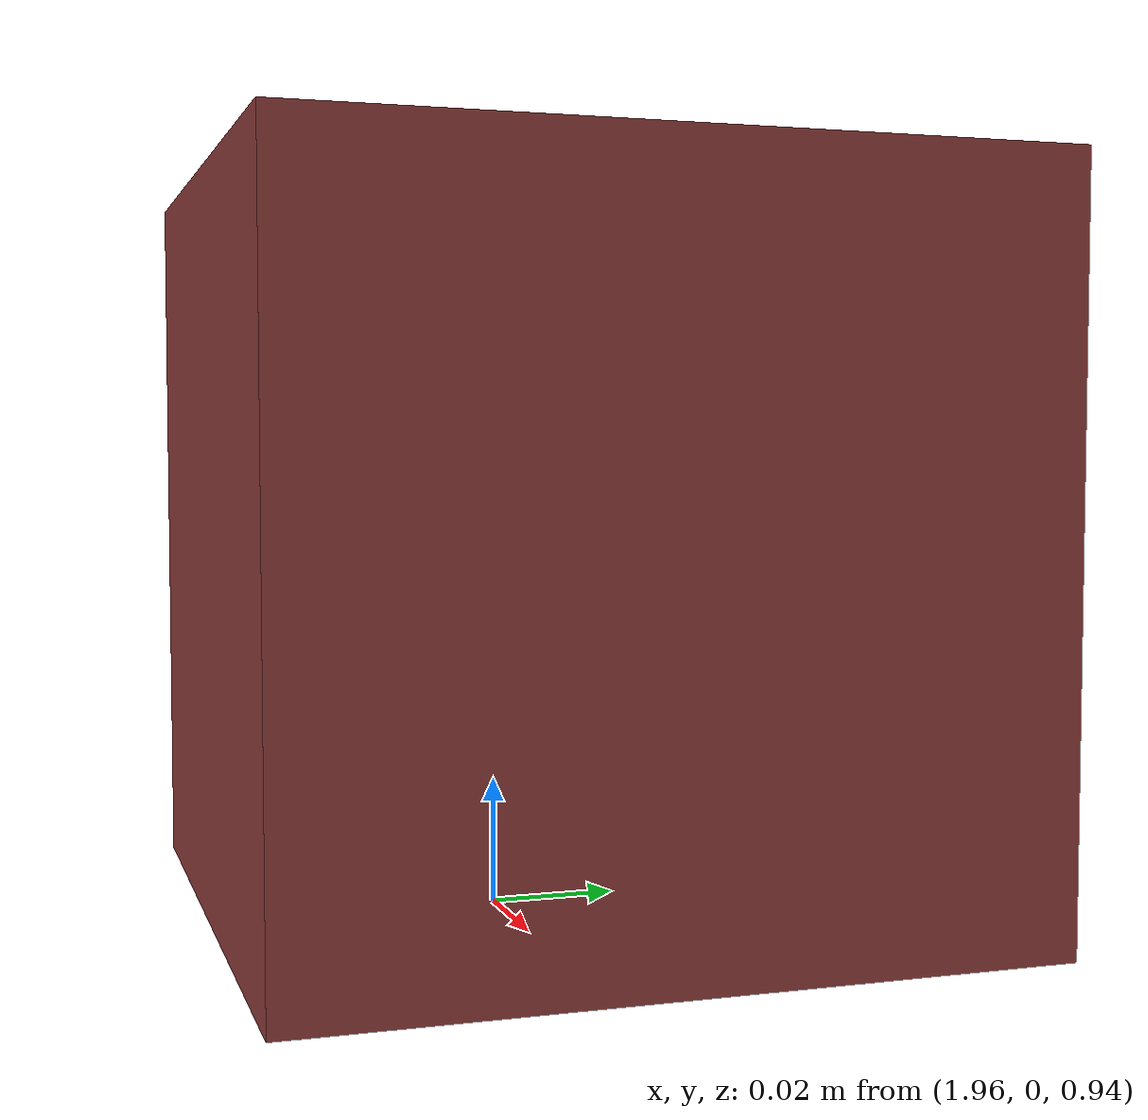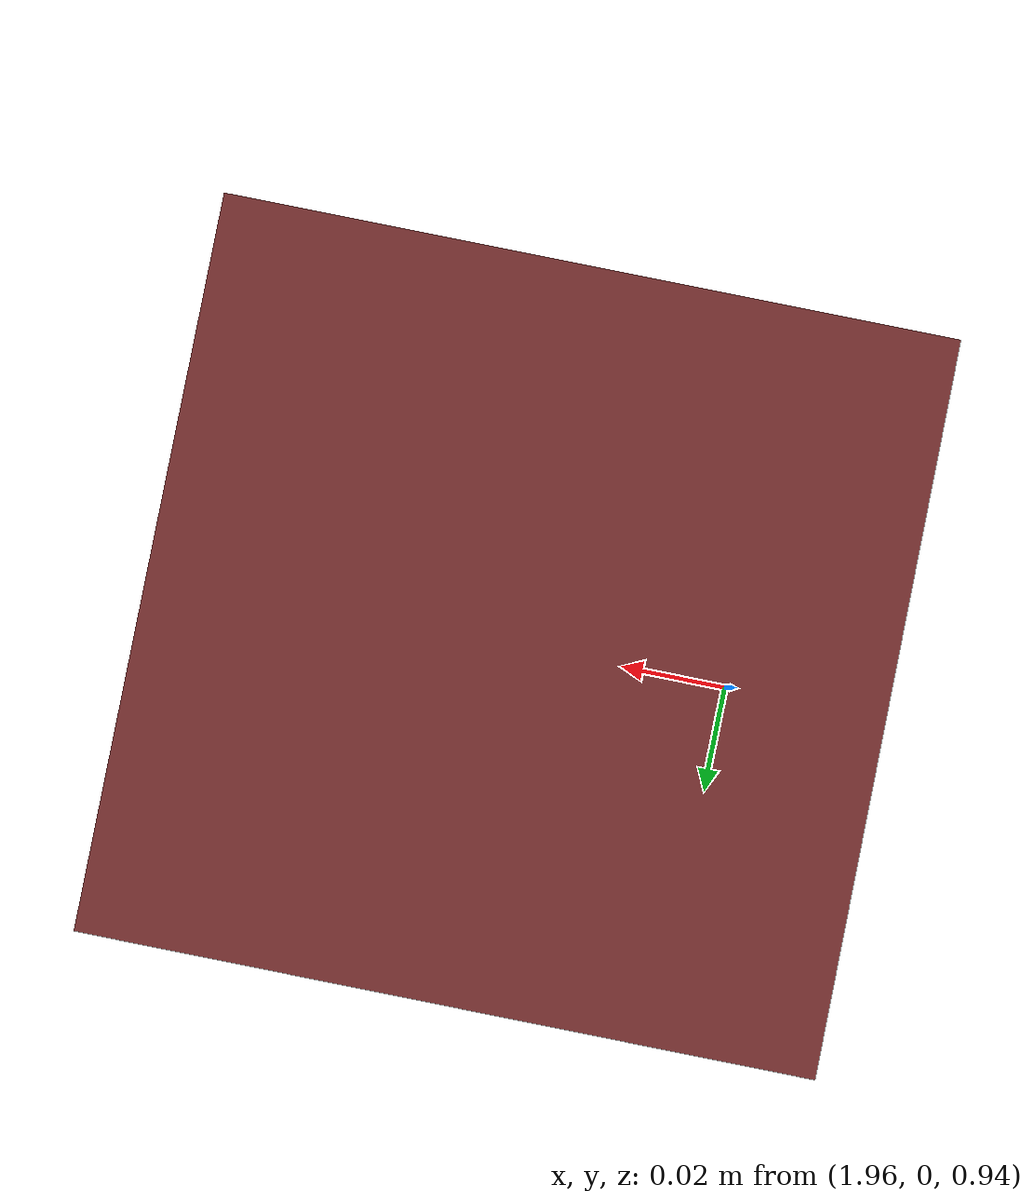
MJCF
<mujoco model="block_model">
  <compiler angle="radian" />

  <visual>
    <quality shadowsize="8192"/>
    <global fovy="45"/>
  </visual>

  <asset>
    <texture type="2d" name="block_texture" builtin="checker" width="512" height="512"
             rgb1="0.8 0.2 0.2" rgb2="0.2 0.2 0.2" />
    <material name="block_material" texture="block_texture" texuniform="true"/>
  </asset>

  <worldbody>
    <!-- Define the block body -->
    <body name="block" pos="2 0 1">
      <!-- Geom defines the shape of the block -->
      <geom name="block_geom" type="box" size="0.05 0.05 0.05" material="block_material" density="1000" />

      <!-- Optional: Add a joint if the block should be movable -->
      <joint type="free" name="block_joint"/>
    </body>
  </worldbody>

</mujoco>
